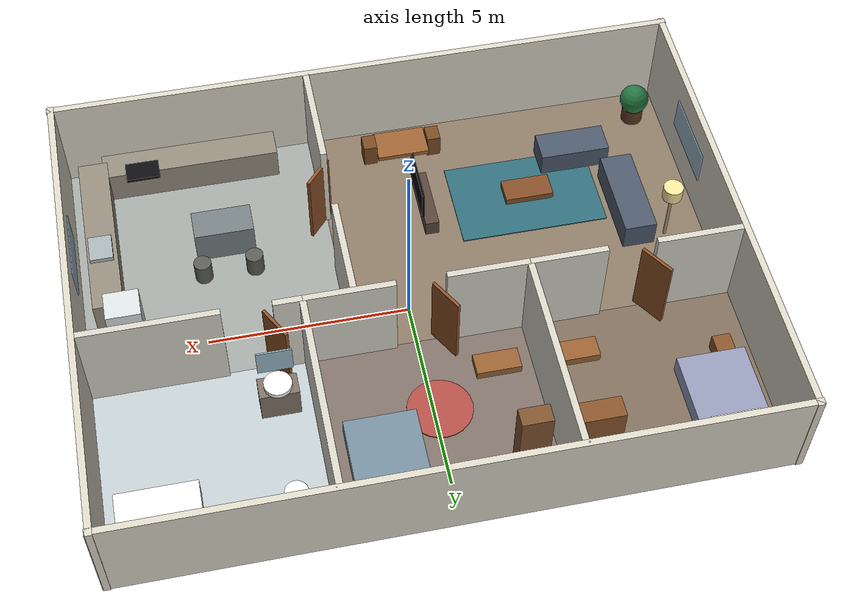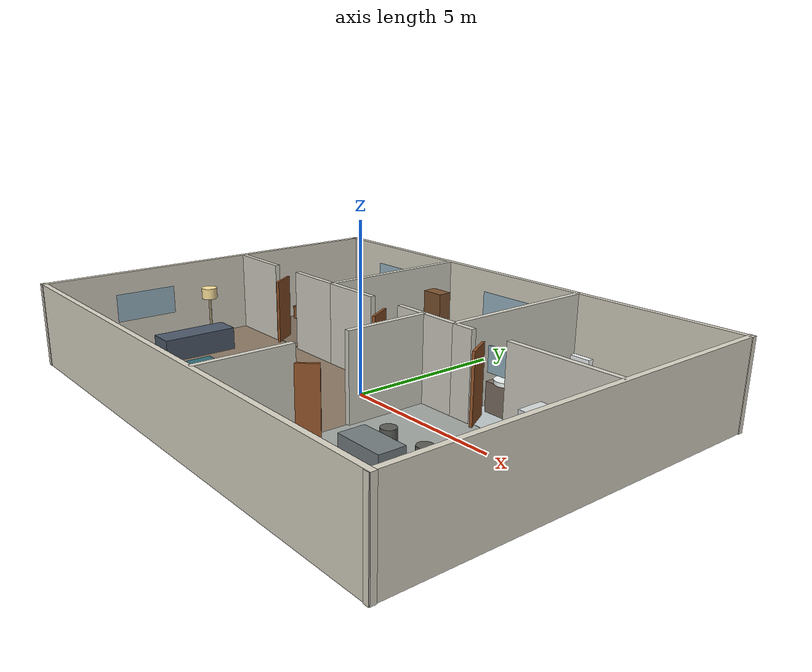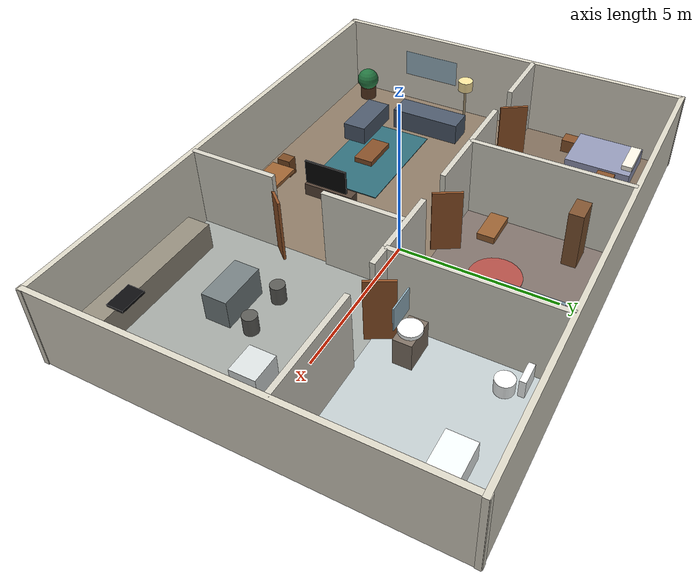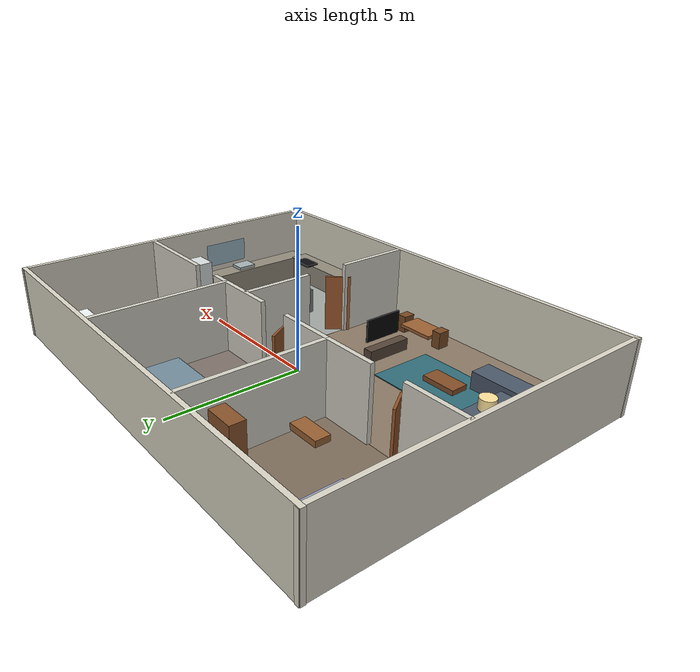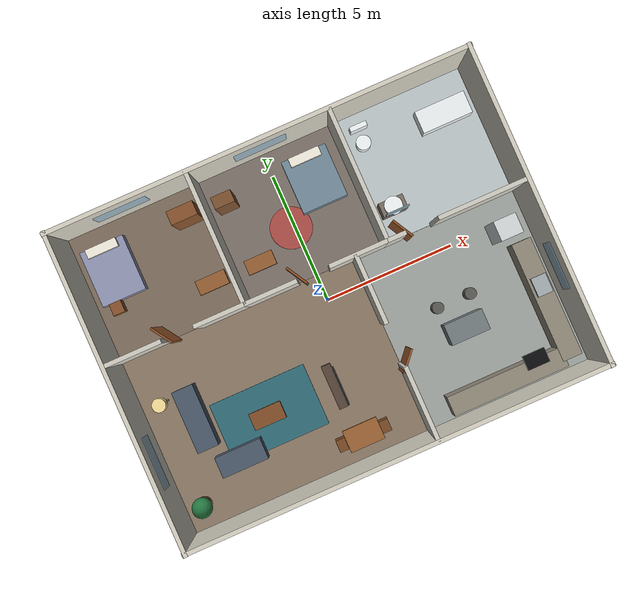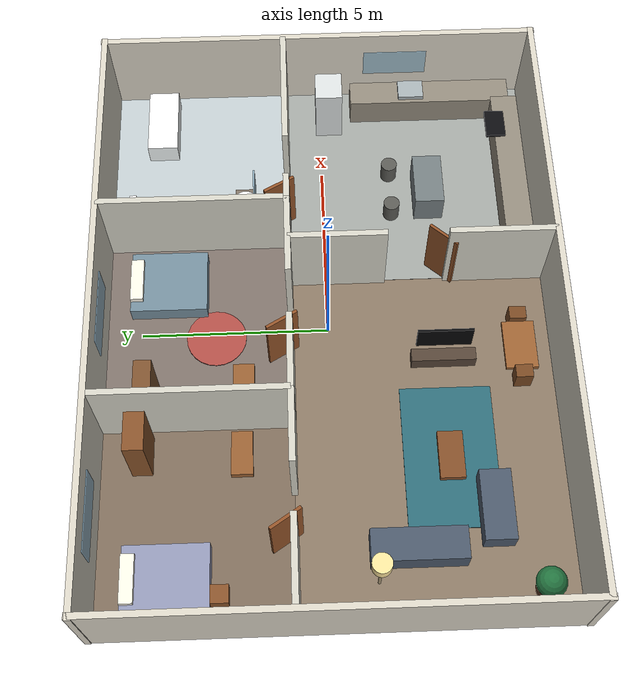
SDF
<?xml version="1.0"?>
<sdf version="1.6">
  <world name="detailed_two_bedroom_apartment">
    <include>
      <uri>model://sun</uri>
    </include>

    <physics name="ode_physics" default="0" type="ode">
      <max_step_size>0.001</max_step_size>
      <real_time_factor>1.0</real_time_factor>
      <real_time_update_rate>1000</real_time_update_rate>
    </physics>

    <scene>
      <ambient>0.62 0.62 0.62 1</ambient>
      <background>0.78 0.84 0.90 1</background>
      <shadows>true</shadows>
    </scene>

    <light name="living_room_area_light" type="point">
      <pose>-3.5 -2.8 2.45 0 0 0</pose>
      <diffuse>0.95 0.88 0.72 1</diffuse>
      <specular>0.25 0.23 0.20 1</specular>
      <attenuation>
        <range>9</range>
        <constant>0.6</constant>
        <linear>0.03</linear>
        <quadratic>0.01</quadratic>
      </attenuation>
    </light>

    <light name="north_room_light" type="point">
      <pose>-0.4 3.9 2.45 0 0 0</pose>
      <diffuse>0.88 0.92 1.00 1</diffuse>
      <specular>0.20 0.20 0.22 1</specular>
      <attenuation>
        <range>8</range>
        <constant>0.7</constant>
        <linear>0.035</linear>
        <quadratic>0.01</quadratic>
      </attenuation>
    </light>

    <light name="kitchen_bath_light" type="point">
      <pose>5.0 -1.4 2.45 0 0 0</pose>
      <diffuse>1.0 0.94 0.82 1</diffuse>
      <specular>0.25 0.25 0.23 1</specular>
      <attenuation>
        <range>8</range>
        <constant>0.7</constant>
        <linear>0.035</linear>
        <quadratic>0.01</quadratic>
      </attenuation>
    </light>

    <model name="apartment_shell_and_furnishings">
      <static>true</static>

      <!-- Floor bands: living room, kitchen, bedrooms, and bathroom. -->
      <link name="living_floor">
        <pose>-3.25 -2.5 0.005 0 0 0</pose>
        <collision name="collision"><geometry><box><size>9.5 7.0 0.01</size></box></geometry></collision>
        <visual name="visual">
          <geometry><box><size>9.5 7.0 0.01</size></box></geometry>
          <material><ambient>0.47 0.41 0.34 1</ambient><diffuse>0.55 0.48 0.40 1</diffuse></material>
        </visual>
      </link>
      <link name="kitchen_floor">
        <pose>4.75 -2.5 0.011 0 0 0</pose>
        <collision name="collision"><geometry><box><size>6.5 7.0 0.01</size></box></geometry></collision>
        <visual name="visual">
          <geometry><box><size>6.5 7.0 0.01</size></box></geometry>
          <material><ambient>0.52 0.54 0.53 1</ambient><diffuse>0.64 0.66 0.64 1</diffuse></material>
        </visual>
      </link>
      <link name="bedroom_one_floor">
        <pose>-5.35 3.5 0.017 0 0 0</pose>
        <collision name="collision"><geometry><box><size>5.3 5.0 0.01</size></box></geometry></collision>
        <visual name="visual">
          <geometry><box><size>5.3 5.0 0.01</size></box></geometry>
          <material><ambient>0.43 0.37 0.31 1</ambient><diffuse>0.50 0.43 0.36 1</diffuse></material>
        </visual>
      </link>
      <link name="bedroom_two_floor">
        <pose>0.0 3.5 0.017 0 0 0</pose>
        <collision name="collision"><geometry><box><size>5.4 5.0 0.01</size></box></geometry></collision>
        <visual name="visual">
          <geometry><box><size>5.4 5.0 0.01</size></box></geometry>
          <material><ambient>0.40 0.36 0.34 1</ambient><diffuse>0.50 0.45 0.42 1</diffuse></material>
        </visual>
      </link>
      <link name="bathroom_floor">
        <pose>5.35 3.5 0.019 0 0 0</pose>
        <collision name="collision"><geometry><box><size>5.3 5.0 0.01</size></box></geometry></collision>
        <visual name="visual">
          <geometry><box><size>5.3 5.0 0.01</size></box></geometry>
          <material><ambient>0.62 0.66 0.67 1</ambient><diffuse>0.76 0.80 0.81 1</diffuse></material>
        </visual>
      </link>

      <!-- Outer walls. -->
      <link name="wall_north">
        <pose>0 6.0 1.3 0 0 0</pose>
        <collision name="collision"><geometry><box><size>16.2 0.16 2.6</size></box></geometry></collision>
        <visual name="visual"><geometry><box><size>16.2 0.16 2.6</size></box></geometry><material><ambient>0.78 0.76 0.70 1</ambient><diffuse>0.86 0.84 0.78 1</diffuse></material></visual>
      </link>
      <link name="wall_south">
        <pose>0 -6.0 1.3 0 0 0</pose>
        <collision name="collision"><geometry><box><size>16.2 0.16 2.6</size></box></geometry></collision>
        <visual name="visual"><geometry><box><size>16.2 0.16 2.6</size></box></geometry><material><ambient>0.78 0.76 0.70 1</ambient><diffuse>0.86 0.84 0.78 1</diffuse></material></visual>
      </link>
      <link name="wall_west">
        <pose>-8.0 0 1.3 0 0 0</pose>
        <collision name="collision"><geometry><box><size>0.16 12.2 2.6</size></box></geometry></collision>
        <visual name="visual"><geometry><box><size>0.16 12.2 2.6</size></box></geometry><material><ambient>0.78 0.76 0.70 1</ambient><diffuse>0.86 0.84 0.78 1</diffuse></material></visual>
      </link>
      <link name="wall_east">
        <pose>8.0 0 1.3 0 0 0</pose>
        <collision name="collision"><geometry><box><size>0.16 12.2 2.6</size></box></geometry></collision>
        <visual name="visual"><geometry><box><size>0.16 12.2 2.6</size></box></geometry><material><ambient>0.78 0.76 0.70 1</ambient><diffuse>0.86 0.84 0.78 1</diffuse></material></visual>
      </link>

      <!-- Room dividers with door openings. -->
      <link name="north_divider_1"><pose>-6.9 1.0 1.3 0 0 0</pose><collision name="collision"><geometry><box><size>2.2 0.16 2.6</size></box></geometry></collision><visual name="visual"><geometry><box><size>2.2 0.16 2.6</size></box></geometry><material><ambient>0.76 0.75 0.70 1</ambient><diffuse>0.84 0.83 0.78 1</diffuse></material></visual></link>
      <link name="north_divider_2"><pose>-3.65 1.0 1.3 0 0 0</pose><collision name="collision"><geometry><box><size>1.9 0.16 2.6</size></box></geometry></collision><visual name="visual"><geometry><box><size>1.9 0.16 2.6</size></box></geometry><material><ambient>0.76 0.75 0.70 1</ambient><diffuse>0.84 0.83 0.78 1</diffuse></material></visual></link>
      <link name="north_divider_3"><pose>-1.7 1.0 1.3 0 0 0</pose><collision name="collision"><geometry><box><size>2.0 0.16 2.6</size></box></geometry></collision><visual name="visual"><geometry><box><size>2.0 0.16 2.6</size></box></geometry><material><ambient>0.76 0.75 0.70 1</ambient><diffuse>0.84 0.83 0.78 1</diffuse></material></visual></link>
      <link name="north_divider_4"><pose>1.6 1.0 1.3 0 0 0</pose><collision name="collision"><geometry><box><size>2.2 0.16 2.6</size></box></geometry></collision><visual name="visual"><geometry><box><size>2.2 0.16 2.6</size></box></geometry><material><ambient>0.76 0.75 0.70 1</ambient><diffuse>0.84 0.83 0.78 1</diffuse></material></visual></link>
      <link name="north_divider_5"><pose>3.05 1.0 1.3 0 0 0</pose><collision name="collision"><geometry><box><size>0.7 0.16 2.6</size></box></geometry></collision><visual name="visual"><geometry><box><size>0.7 0.16 2.6</size></box></geometry><material><ambient>0.76 0.75 0.70 1</ambient><diffuse>0.84 0.83 0.78 1</diffuse></material></visual></link>
      <link name="north_divider_6"><pose>6.3 1.0 1.3 0 0 0</pose><collision name="collision"><geometry><box><size>3.4 0.16 2.6</size></box></geometry></collision><visual name="visual"><geometry><box><size>3.4 0.16 2.6</size></box></geometry><material><ambient>0.76 0.75 0.70 1</ambient><diffuse>0.84 0.83 0.78 1</diffuse></material></visual></link>
      <link name="bedroom_split_wall"><pose>-2.7 3.5 1.3 0 0 0</pose><collision name="collision"><geometry><box><size>0.16 5.0 2.6</size></box></geometry></collision><visual name="visual"><geometry><box><size>0.16 5.0 2.6</size></box></geometry><material><ambient>0.76 0.75 0.70 1</ambient><diffuse>0.84 0.83 0.78 1</diffuse></material></visual></link>
      <link name="bath_split_wall"><pose>2.7 3.5 1.3 0 0 0</pose><collision name="collision"><geometry><box><size>0.16 5.0 2.6</size></box></geometry></collision><visual name="visual"><geometry><box><size>0.16 5.0 2.6</size></box></geometry><material><ambient>0.76 0.75 0.70 1</ambient><diffuse>0.84 0.83 0.78 1</diffuse></material></visual></link>
      <link name="kitchen_divider_lower"><pose>1.5 -4.6 1.3 0 0 0</pose><collision name="collision"><geometry><box><size>0.16 2.8 2.6</size></box></geometry></collision><visual name="visual"><geometry><box><size>0.16 2.8 2.6</size></box></geometry><material><ambient>0.76 0.75 0.70 1</ambient><diffuse>0.84 0.83 0.78 1</diffuse></material></visual></link>
      <link name="kitchen_divider_upper"><pose>1.5 -0.3 1.3 0 0 0</pose><collision name="collision"><geometry><box><size>0.16 2.6 2.6</size></box></geometry></collision><visual name="visual"><geometry><box><size>0.16 2.6 2.6</size></box></geometry><material><ambient>0.76 0.75 0.70 1</ambient><diffuse>0.84 0.83 0.78 1</diffuse></material></visual></link>

      <!-- Open doors and trim. -->
      <link name="bedroom_one_open_door"><pose>-5.8 1.2 1.05 0 0 0.58</pose><collision name="collision"><geometry><box><size>0.08 0.9 2.1</size></box></geometry></collision><visual name="visual"><geometry><box><size>0.08 0.9 2.1</size></box></geometry><material><ambient>0.46 0.25 0.12 1</ambient><diffuse>0.58 0.33 0.16 1</diffuse></material></visual></link>
      <link name="bedroom_two_open_door"><pose>-0.65 1.2 1.05 0 0 0.52</pose><collision name="collision"><geometry><box><size>0.08 0.9 2.1</size></box></geometry></collision><visual name="visual"><geometry><box><size>0.08 0.9 2.1</size></box></geometry><material><ambient>0.46 0.25 0.12 1</ambient><diffuse>0.58 0.33 0.16 1</diffuse></material></visual></link>
      <link name="bath_open_door"><pose>3.4 1.2 1.05 0 0 0.50</pose><collision name="collision"><geometry><box><size>0.08 0.9 2.1</size></box></geometry></collision><visual name="visual"><geometry><box><size>0.08 0.9 2.1</size></box></geometry><material><ambient>0.46 0.25 0.12 1</ambient><diffuse>0.58 0.33 0.16 1</diffuse></material></visual></link>
      <link name="kitchen_open_door"><pose>1.68 -3.1 1.05 0 0 -0.72</pose><collision name="collision"><geometry><box><size>0.08 0.9 2.1</size></box></geometry></collision><visual name="visual"><geometry><box><size>0.08 0.9 2.1</size></box></geometry><material><ambient>0.46 0.25 0.12 1</ambient><diffuse>0.58 0.33 0.16 1</diffuse></material></visual></link>

      <!-- Windows. -->
      <link name="living_west_window"><pose>-7.91 -2.8 1.45 0 0 0</pose><visual name="visual"><geometry><box><size>0.03 2.0 0.9</size></box></geometry><material><ambient>0.38 0.55 0.68 0.55</ambient><diffuse>0.48 0.70 0.85 0.55</diffuse><transparency>0.35</transparency></material></visual></link>
      <link name="bedroom_one_window"><pose>-5.4 5.91 1.45 0 0 0</pose><visual name="visual"><geometry><box><size>2.0 0.03 0.9</size></box></geometry><material><ambient>0.38 0.55 0.68 0.55</ambient><diffuse>0.48 0.70 0.85 0.55</diffuse><transparency>0.35</transparency></material></visual></link>
      <link name="bedroom_two_window"><pose>0.0 5.91 1.45 0 0 0</pose><visual name="visual"><geometry><box><size>2.0 0.03 0.9</size></box></geometry><material><ambient>0.38 0.55 0.68 0.55</ambient><diffuse>0.48 0.70 0.85 0.55</diffuse><transparency>0.35</transparency></material></visual></link>
      <link name="kitchen_east_window"><pose>7.91 -2.2 1.45 0 0 0</pose><visual name="visual"><geometry><box><size>0.03 1.8 0.9</size></box></geometry><material><ambient>0.38 0.55 0.68 0.55</ambient><diffuse>0.48 0.70 0.85 0.55</diffuse><transparency>0.35</transparency></material></visual></link>

      <!-- Living room furniture. -->
      <link name="living_rug"><pose>-3.7 -3.0 0.035 0 0 0</pose><visual name="visual"><geometry><box><size>3.8 2.4 0.03</size></box></geometry><material><ambient>0.14 0.31 0.35 1</ambient><diffuse>0.19 0.43 0.48 1</diffuse></material></visual></link>
      <link name="sofa_main"><pose>-6.15 -2.0 0.42 0 0 1.5708</pose><collision name="collision"><geometry><box><size>2.4 0.82 0.72</size></box></geometry></collision><visual name="visual"><geometry><box><size>2.4 0.82 0.72</size></box></geometry><material><ambient>0.21 0.25 0.30 1</ambient><diffuse>0.30 0.35 0.42 1</diffuse></material></visual></link>
      <link name="sofa_chaise"><pose>-5.2 -4.0 0.36 0 0 0</pose><collision name="collision"><geometry><box><size>1.8 0.8 0.62</size></box></geometry></collision><visual name="visual"><geometry><box><size>1.8 0.8 0.62</size></box></geometry><material><ambient>0.21 0.25 0.30 1</ambient><diffuse>0.30 0.35 0.42 1</diffuse></material></visual></link>
      <link name="coffee_table"><pose>-3.75 -3.0 0.23 0 0 0</pose><collision name="collision"><geometry><box><size>1.25 0.65 0.18</size></box></geometry></collision><visual name="visual"><geometry><box><size>1.25 0.65 0.18</size></box></geometry><material><ambient>0.38 0.22 0.11 1</ambient><diffuse>0.52 0.31 0.16 1</diffuse></material></visual></link>
      <link name="tv_console"><pose>-1.05 -3.0 0.32 0 0 1.5708</pose><collision name="collision"><geometry><box><size>1.7 0.35 0.42</size></box></geometry></collision><visual name="visual"><geometry><box><size>1.7 0.35 0.42</size></box></geometry><material><ambient>0.22 0.18 0.15 1</ambient><diffuse>0.34 0.27 0.22 1</diffuse></material></visual></link>
      <link name="tv_panel"><pose>-0.83 -3.0 1.10 0 0 1.5708</pose><collision name="collision"><geometry><box><size>1.45 0.06 0.82</size></box></geometry></collision><visual name="visual"><geometry><box><size>1.45 0.06 0.82</size></box></geometry><material><ambient>0.01 0.01 0.012 1</ambient><diffuse>0.02 0.02 0.025 1</diffuse></material></visual></link>
      <link name="dining_table"><pose>-0.8 -5.05 0.40 0 0 0</pose><collision name="collision"><geometry><box><size>1.35 0.85 0.12</size></box></geometry></collision><visual name="visual"><geometry><box><size>1.35 0.85 0.12</size></box></geometry><material><ambient>0.50 0.30 0.15 1</ambient><diffuse>0.62 0.39 0.20 1</diffuse></material></visual></link>
      <link name="dining_chair_1"><pose>-1.65 -5.05 0.35 0 0 0</pose><collision name="collision"><geometry><box><size>0.35 0.45 0.62</size></box></geometry></collision><visual name="visual"><geometry><box><size>0.35 0.45 0.62</size></box></geometry><material><ambient>0.34 0.20 0.10 1</ambient><diffuse>0.48 0.29 0.14 1</diffuse></material></visual></link>
      <link name="dining_chair_2"><pose>0.05 -5.05 0.35 0 0 0</pose><collision name="collision"><geometry><box><size>0.35 0.45 0.62</size></box></geometry></collision><visual name="visual"><geometry><box><size>0.35 0.45 0.62</size></box></geometry><material><ambient>0.34 0.20 0.10 1</ambient><diffuse>0.48 0.29 0.14 1</diffuse></material></visual></link>

      <!-- Bedroom one furniture. -->
      <link name="bedroom_one_bed"><pose>-6.75 4.15 0.35 0 0 0</pose><collision name="collision"><geometry><box><size>1.7 2.15 0.48</size></box></geometry></collision><visual name="visual"><geometry><box><size>1.7 2.15 0.48</size></box></geometry><material><ambient>0.47 0.48 0.58 1</ambient><diffuse>0.58 0.60 0.72 1</diffuse></material></visual></link>
      <link name="bedroom_one_pillow"><pose>-6.75 5.05 0.68 0 0 0</pose><collision name="collision"><geometry><box><size>1.20 0.34 0.16</size></box></geometry></collision><visual name="visual"><geometry><box><size>1.20 0.34 0.16</size></box></geometry><material><ambient>0.90 0.88 0.82 1</ambient><diffuse>0.98 0.96 0.90 1</diffuse></material></visual></link>
      <link name="bedroom_one_wardrobe"><pose>-3.45 4.85 0.95 0 0 0</pose><collision name="collision"><geometry><box><size>1.0 0.52 1.9</size></box></geometry></collision><visual name="visual"><geometry><box><size>1.0 0.52 1.9</size></box></geometry><material><ambient>0.42 0.25 0.13 1</ambient><diffuse>0.54 0.33 0.17 1</diffuse></material></visual></link>
      <link name="bedroom_one_desk"><pose>-3.6 2.3 0.42 0 0 0</pose><collision name="collision"><geometry><box><size>1.15 0.55 0.22</size></box></geometry></collision><visual name="visual"><geometry><box><size>1.15 0.55 0.22</size></box></geometry><material><ambient>0.48 0.30 0.16 1</ambient><diffuse>0.60 0.38 0.20 1</diffuse></material></visual></link>
      <link name="bedroom_one_nightstand"><pose>-7.15 2.85 0.36 0 0 0</pose><collision name="collision"><geometry><box><size>0.45 0.45 0.45</size></box></geometry></collision><visual name="visual"><geometry><box><size>0.45 0.45 0.45</size></box></geometry><material><ambient>0.42 0.25 0.13 1</ambient><diffuse>0.54 0.33 0.17 1</diffuse></material></visual></link>

      <!-- Bedroom two furniture. -->
      <link name="bedroom_two_bed"><pose>1.35 4.25 0.35 0 0 0</pose><collision name="collision"><geometry><box><size>1.75 2.05 0.48</size></box></geometry></collision><visual name="visual"><geometry><box><size>1.75 2.05 0.48</size></box></geometry><material><ambient>0.36 0.45 0.50 1</ambient><diffuse>0.46 0.56 0.62 1</diffuse></material></visual></link>
      <link name="bedroom_two_pillow"><pose>1.35 5.10 0.68 0 0 0</pose><collision name="collision"><geometry><box><size>1.20 0.34 0.16</size></box></geometry></collision><visual name="visual"><geometry><box><size>1.20 0.34 0.16</size></box></geometry><material><ambient>0.90 0.88 0.82 1</ambient><diffuse>0.98 0.96 0.90 1</diffuse></material></visual></link>
      <link name="bedroom_two_bookshelf"><pose>-1.95 4.70 0.95 0 0 0</pose><collision name="collision"><geometry><box><size>0.75 0.45 1.9</size></box></geometry></collision><visual name="visual"><geometry><box><size>0.75 0.45 1.9</size></box></geometry><material><ambient>0.37 0.24 0.14 1</ambient><diffuse>0.50 0.33 0.19 1</diffuse></material></visual></link>
      <link name="bedroom_two_desk"><pose>-1.7 2.25 0.42 0 0 0</pose><collision name="collision"><geometry><box><size>1.10 0.55 0.22</size></box></geometry></collision><visual name="visual"><geometry><box><size>1.10 0.55 0.22</size></box></geometry><material><ambient>0.48 0.30 0.16 1</ambient><diffuse>0.60 0.38 0.20 1</diffuse></material></visual></link>
      <link name="bedroom_two_round_rug"><pose>-0.15 3.0 0.04 0 0 0</pose><visual name="visual"><geometry><cylinder><radius>0.8</radius><length>0.03</length></cylinder></geometry><material><ambient>0.56 0.22 0.20 1</ambient><diffuse>0.70 0.31 0.28 1</diffuse></material></visual></link>

      <!-- Kitchen. -->
      <link name="kitchen_counter_east"><pose>7.25 -3.2 0.45 0 0 0</pose><collision name="collision"><geometry><box><size>0.75 4.6 0.9</size></box></geometry></collision><visual name="visual"><geometry><box><size>0.75 4.6 0.9</size></box></geometry><material><ambient>0.45 0.43 0.38 1</ambient><diffuse>0.58 0.55 0.49 1</diffuse></material></visual></link>
      <link name="kitchen_counter_south"><pose>4.75 -5.35 0.45 0 0 0</pose><collision name="collision"><geometry><box><size>4.5 0.75 0.9</size></box></geometry></collision><visual name="visual"><geometry><box><size>4.5 0.75 0.9</size></box></geometry><material><ambient>0.45 0.43 0.38 1</ambient><diffuse>0.58 0.55 0.49 1</diffuse></material></visual></link>
      <link name="kitchen_island"><pose>4.2 -2.95 0.47 0 0 0</pose><collision name="collision"><geometry><box><size>1.5 0.8 0.94</size></box></geometry></collision><visual name="visual"><geometry><box><size>1.5 0.8 0.94</size></box></geometry><material><ambient>0.35 0.38 0.39 1</ambient><diffuse>0.46 0.50 0.51 1</diffuse></material></visual></link>
      <link name="refrigerator"><pose>6.85 -0.25 0.9 0 0 0</pose><collision name="collision"><geometry><box><size>0.85 0.75 1.8</size></box></geometry></collision><visual name="visual"><geometry><box><size>0.85 0.75 1.8</size></box></geometry><material><ambient>0.72 0.74 0.74 1</ambient><diffuse>0.86 0.88 0.88 1</diffuse></material></visual></link>
      <link name="stove_top"><pose>6.0 -5.0 0.93 0 0 0</pose><collision name="collision"><geometry><box><size>0.85 0.55 0.08</size></box></geometry></collision><visual name="visual"><geometry><box><size>0.85 0.55 0.08</size></box></geometry><material><ambient>0.03 0.03 0.035 1</ambient><diffuse>0.05 0.05 0.06 1</diffuse></material></visual></link>
      <link name="sink_basin"><pose>7.27 -2.65 0.96 0 0 0</pose><collision name="collision"><geometry><box><size>0.58 0.72 0.12</size></box></geometry></collision><visual name="visual"><geometry><box><size>0.58 0.72 0.12</size></box></geometry><material><ambient>0.50 0.54 0.55 1</ambient><diffuse>0.66 0.70 0.71 1</diffuse></material></visual></link>
      <link name="kitchen_bar_stool_1"><pose>3.55 -1.9 0.44 0 0 0</pose><collision name="collision"><geometry><cylinder><radius>0.22</radius><length>0.58</length></cylinder></geometry></collision><visual name="visual"><geometry><cylinder><radius>0.22</radius><length>0.58</length></cylinder></geometry><material><ambient>0.25 0.25 0.24 1</ambient><diffuse>0.36 0.36 0.34 1</diffuse></material></visual></link>
      <link name="kitchen_bar_stool_2"><pose>4.85 -1.9 0.44 0 0 0</pose><collision name="collision"><geometry><cylinder><radius>0.22</radius><length>0.58</length></cylinder></geometry></collision><visual name="visual"><geometry><cylinder><radius>0.22</radius><length>0.58</length></cylinder></geometry><material><ambient>0.25 0.25 0.24 1</ambient><diffuse>0.36 0.36 0.34 1</diffuse></material></visual></link>

      <!-- Bathroom. -->
      <link name="bathtub"><pose>6.65 4.55 0.36 0 0 0</pose><collision name="collision"><geometry><box><size>1.95 0.85 0.62</size></box></geometry></collision><visual name="visual"><geometry><box><size>1.95 0.85 0.62</size></box></geometry><material><ambient>0.82 0.85 0.85 1</ambient><diffuse>0.96 0.98 0.98 1</diffuse></material></visual></link>
      <link name="toilet_base"><pose>3.55 4.75 0.26 0 0 0</pose><collision name="collision"><geometry><cylinder><radius>0.28</radius><length>0.42</length></cylinder></geometry></collision><visual name="visual"><geometry><cylinder><radius>0.28</radius><length>0.42</length></cylinder></geometry><material><ambient>0.86 0.88 0.88 1</ambient><diffuse>0.98 1.0 1.0 1</diffuse></material></visual></link>
      <link name="toilet_tank"><pose>3.55 5.28 0.72 0 0 0</pose><collision name="collision"><geometry><box><size>0.65 0.18 0.55</size></box></geometry></collision><visual name="visual"><geometry><box><size>0.65 0.18 0.55</size></box></geometry><material><ambient>0.86 0.88 0.88 1</ambient><diffuse>0.98 1.0 1.0 1</diffuse></material></visual></link>
      <link name="vanity"><pose>3.55 2.15 0.45 0 0 0</pose><collision name="collision"><geometry><box><size>0.95 0.55 0.9</size></box></geometry></collision><visual name="visual"><geometry><box><size>0.95 0.55 0.9</size></box></geometry><material><ambient>0.38 0.34 0.30 1</ambient><diffuse>0.50 0.45 0.40 1</diffuse></material></visual></link>
      <link name="sink_round"><pose>3.55 2.15 0.96 0 0 0</pose><collision name="collision"><geometry><cylinder><radius>0.34</radius><length>0.12</length></cylinder></geometry></collision><visual name="visual"><geometry><cylinder><radius>0.34</radius><length>0.12</length></cylinder></geometry><material><ambient>0.84 0.86 0.86 1</ambient><diffuse>0.98 1.0 1.0 1</diffuse></material></visual></link>
      <link name="bath_mirror"><pose>3.55 1.88 1.55 0 0 0</pose><visual name="visual"><geometry><box><size>0.85 0.04 0.75</size></box></geometry><material><ambient>0.35 0.45 0.50 1</ambient><diffuse>0.60 0.72 0.78 1</diffuse><transparency>0.15</transparency></material></visual></link>

      <!-- Small plants and lamp volumes for extra visual features. -->
      <link name="living_planter"><pose>-7.2 -5.05 0.28 0 0 0</pose><collision name="collision"><geometry><cylinder><radius>0.28</radius><length>0.45</length></cylinder></geometry></collision><visual name="visual"><geometry><cylinder><radius>0.28</radius><length>0.45</length></cylinder></geometry><material><ambient>0.22 0.13 0.08 1</ambient><diffuse>0.36 0.22 0.13 1</diffuse></material></visual></link>
      <link name="living_plant_top"><pose>-7.2 -5.05 0.78 0 0 0</pose><visual name="visual"><geometry><sphere><radius>0.38</radius></sphere></geometry><material><ambient>0.10 0.32 0.18 1</ambient><diffuse>0.14 0.46 0.25 1</diffuse></material></visual></link>
      <link name="floor_lamp_pole"><pose>-6.9 -1.0 0.9 0 0 0</pose><collision name="collision"><geometry><cylinder><radius>0.04</radius><length>1.6</length></cylinder></geometry></collision><visual name="visual"><geometry><cylinder><radius>0.04</radius><length>1.6</length></cylinder></geometry><material><ambient>0.45 0.40 0.32 1</ambient><diffuse>0.65 0.58 0.45 1</diffuse></material></visual></link>
      <link name="floor_lamp_shade"><pose>-6.9 -1.0 1.75 0 0 0</pose><visual name="visual"><geometry><cylinder><radius>0.25</radius><length>0.35</length></cylinder></geometry><material><ambient>0.92 0.82 0.56 1</ambient><diffuse>1.0 0.90 0.62 1</diffuse></material></visual></link>
    </model>
  </world>
</sdf>
